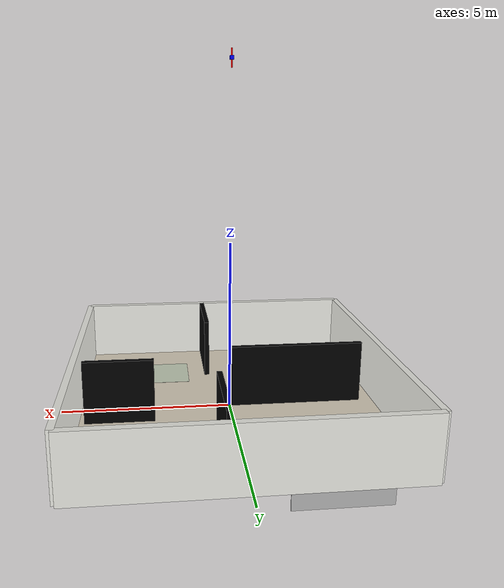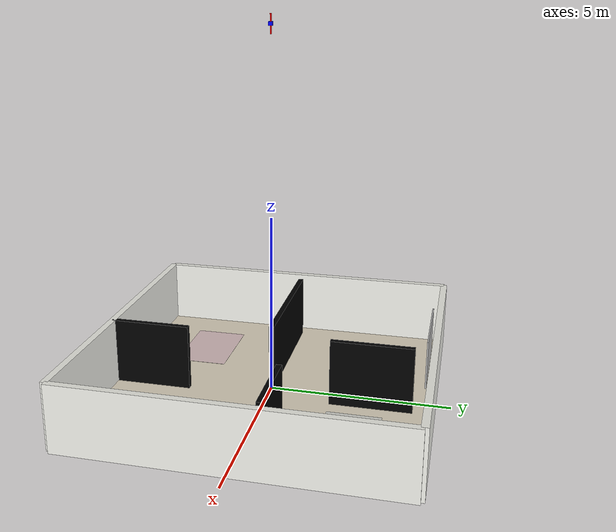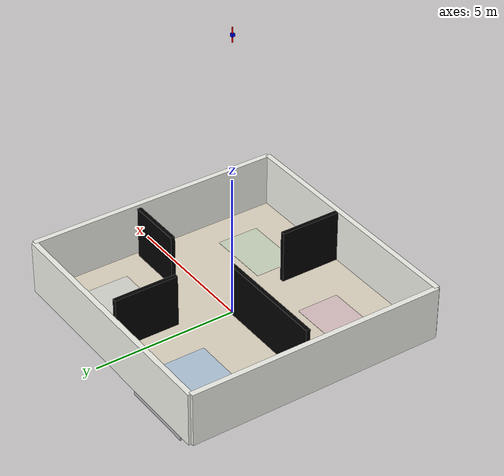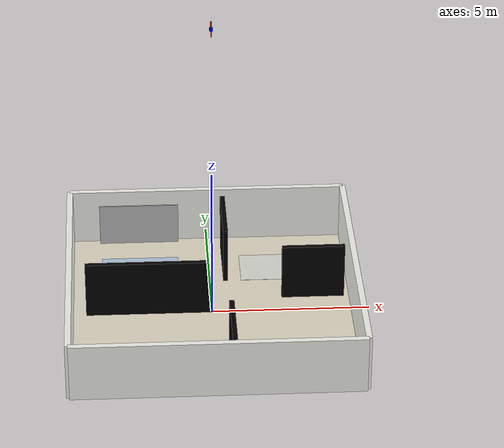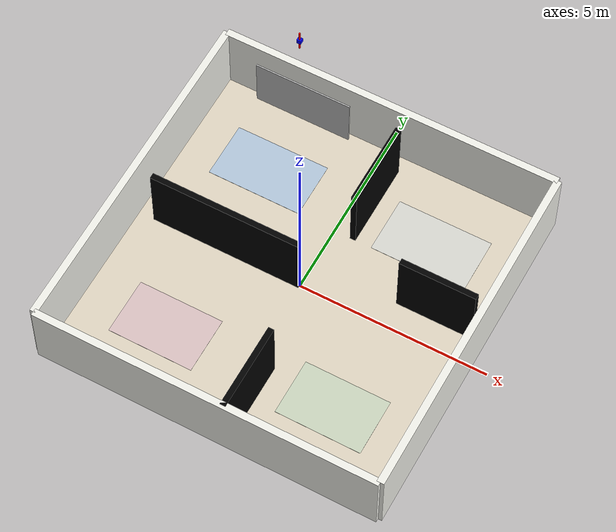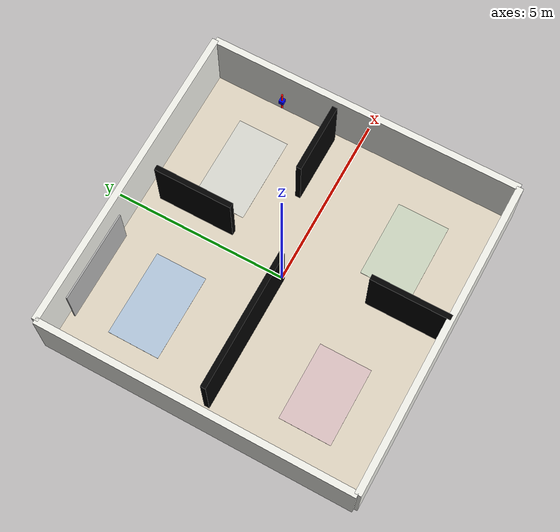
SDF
<sdf version="1.9">
 <world name="house">
  <physics type="ode">
   <max_step_size>0.003</max_step_size>
   <real_time_factor>1</real_time_factor>
   <real_time_update_rate>1000</real_time_update_rate>
  </physics>
  <plugin name="ignition::gazebo::systems::Physics" filename="libignition-gazebo-physics-system.so"/>
  <plugin name="ignition::gazebo::systems::UserCommands" filename="libignition-gazebo-user-commands-system.so"/>
  <plugin name="ignition::gazebo::systems::SceneBroadcaster" filename="libignition-gazebo-scene-broadcaster-system.so"/>
  <scene>
   <ambient>0.3 0.3 0.3 1</ambient>
   <background>0.85 0.90 0.95 1</background>
   <shadows>false</shadows>
   <grid>false</grid>
  </scene>
  <light type="directional" name="sun_light">
   <pose>0 0 7 0 0 0</pose>
   <diffuse>0.8 0.8 0.8 1</diffuse>
   <specular>0.2 0.2 0.2 1</specular>
   <direction>-0.3 0.1 -1</direction>
   <cast_shadows>false</cast_shadows>
  </light>
  <gravity>0 0 -9.8</gravity>
  <magnetic_field>6e-06 2.3e-05 -4.2e-05</magnetic_field>
  <atmosphere type="adiabatic"/>
  <model name="house_floor">
   <static>true</static>
   <link name="floor_link">
    <collision name="collision"><geometry><box><size>9 9 0.04</size></box></geometry></collision>
    <visual name="visual">
     <geometry><box><size>9 9 0.04</size></box></geometry>
     <material>
      <ambient>0.88 0.84 0.76 1</ambient>
      <diffuse>0.88 0.84 0.76 1</diffuse>
      <specular>0.1 0.1 0.1 1</specular>
     </material>
    </visual>
   </link>
  </model>
  <model name="wall_north">
   <static>true</static>
   <pose>0 4.5 0.94 0 0 0</pose>
   <link name="link">
    <collision name="collision"><geometry><box><size>9 0.19 1.88</size></box></geometry></collision>
    <visual name="visual">
     <geometry><box><size>9 0.19 1.88</size></box></geometry>
     <material><ambient>0.95 0.95 0.92 1</ambient><diffuse>0.95 0.95 0.92 1</diffuse></material>
    </visual>
   </link>
  </model>
  <model name="wall_south">
   <static>true</static>
   <pose>0 -4.5 0.94 0 0 0</pose>
   <link name="link">
    <collision name="collision"><geometry><box><size>9 0.19 1.88</size></box></geometry></collision>
    <visual name="visual">
     <geometry><box><size>9 0.19 1.88</size></box></geometry>
     <material><ambient>0.95 0.95 0.92 1</ambient><diffuse>0.95 0.95 0.92 1</diffuse></material>
    </visual>
   </link>
  </model>
  <model name="wall_east">
   <static>true</static>
   <pose>4.5 0 0.94 0 0 0</pose>
   <link name="link">
    <collision name="collision"><geometry><box><size>0.19 9 1.88</size></box></geometry></collision>
    <visual name="visual">
     <geometry><box><size>0.19 9 1.88</size></box></geometry>
     <material><ambient>0.95 0.95 0.92 1</ambient><diffuse>0.95 0.95 0.92 1</diffuse></material>
    </visual>
   </link>
  </model>
  <model name="wall_west">
   <static>true</static>
   <pose>-4.5 0 0.94 0 0 0</pose>
   <link name="link">
    <collision name="collision"><geometry><box><size>0.19 9 1.88</size></box></geometry></collision>
    <visual name="visual">
     <geometry><box><size>0.19 9 1.88</size></box></geometry>
     <material><ambient>0.95 0.95 0.92 1</ambient><diffuse>0.95 0.95 0.92 1</diffuse></material>
    </visual>
   </link>
  </model>
  <model name="inner_wall_top_left">
   <static>true</static>
   <pose>-2.00 0 0.94 0 0 0</pose>
   <link name="link">
    <collision name="collision"><geometry><box><size>4.00 0.15 1.88</size></box></geometry></collision>
    <visual name="visual">
     <geometry><box><size>4.00 0.15 1.88</size></box></geometry>
     <material><ambient>0 0 0 1</ambient><diffuse>0 0 0 1</diffuse></material>
    </visual>
   </link>
  </model>
  <model name="inner_wall_top_right">
   <static>true</static>
   <pose>3.25 0.75 0.94 0 0 0</pose>
   <link name="link">
    <collision name="collision"><geometry><box><size>2.00 0.15 1.88</size></box></geometry></collision>
    <visual name="visual">
     <geometry><box><size>2.00 0.15 1.88</size></box></geometry>
     <material><ambient>0 0 0 1</ambient><diffuse>0 0 0 1</diffuse></material>
    </visual>
   </link>
  </model>
  <model name="inner_wall_vertical_top">
   <static>true</static>
   <pose>0.50 2.87 0.94 0 0 0</pose>
   <link name="link">
    <collision name="collision"><geometry><box><size>0.15 2.25 1.88</size></box></geometry></collision>
    <visual name="visual">
     <geometry><box><size>0.15 2.25 1.88</size></box></geometry>
     <material><ambient>0 0 0 1</ambient><diffuse>0 0 0 1</diffuse></material>
    </visual>
   </link>
  </model>
  <model name="inner_wall_vertical_bottom">
   <static>true</static>
   <pose>0.50 -3.38 0.94 0 0 0</pose>
   <link name="link">
    <collision name="collision"><geometry><box><size>0.15 2.25 1.88</size></box></geometry></collision>
    <visual name="visual">
     <geometry><box><size>0.15 2.25 1.88</size></box></geometry>
     <material><ambient>0 0 0 1</ambient><diffuse>0 0 0 1</diffuse></material>
    </visual>
   </link>
  </model>
  <model name="ids_camera">
   <pose>0 0 10 0 1.5708 1.5708</pose>
   <static>true</static>
   <link name="camera_link">
    <visual name="camera_body_visual">
     <geometry><box><size>0.1 0.1 0.1</size></box></geometry>
     <material><ambient>0 0 1 1</ambient><diffuse>0 0 1 1</diffuse><specular>1 1 1 1</specular></material>
    </visual>
    <visual name="camera_axis">
     <geometry><cylinder><radius>0.02</radius><length>0.5</length></cylinder></geometry>
     <pose>0 0 0 0 1.5708 0</pose>
     <material><ambient>1 0 0 1</ambient><diffuse>1 0 0 1</diffuse></material>
    </visual>
    <sensor name="ids_overhead" type="camera">
     <always_on>true</always_on>
     <update_rate>47</update_rate>
     <visualize>true</visualize>
     <topic>/ids_overhead/image</topic>
     <camera name="overhead_cam">
      <horizontal_fov>1.3962634</horizontal_fov>
      <image><width>1936</width><height>1216</height><format>R8G8B8</format></image>
      <clip><near>0.1</near><far>100</far></clip>
     </camera>
    </sensor>
   </link>
  </model>
  <model name="living_room_rug">
   <static>true</static>
   <pose>-2.25 2.50 0.02 0 0 0</pose>
   <link name="link">
    <collision name="collision"><geometry><box><size>2.50 1.50 0.01</size></box></geometry></collision>
    <visual name="visual">
     <geometry><box><size>2.50 1.50 0.01</size></box></geometry>
     <material><ambient>0.70 0.78 0.86 1</ambient><diffuse>0.70 0.78 0.86 1</diffuse></material>
    </visual>
   </link>
  </model>
  <model name="kitchen_rug">
   <static>true</static>
   <pose>2.25 2.50 0.02 0 0 0</pose>
   <link name="link">
    <collision name="collision"><geometry><box><size>2.50 1.50 0.01</size></box></geometry></collision>
    <visual name="visual">
     <geometry><box><size>2.50 1.50 0.01</size></box></geometry>
     <material><ambient>0.85 0.85 0.82 1</ambient><diffuse>0.85 0.85 0.82 1</diffuse></material>
    </visual>
   </link>
  </model>
  <model name="bedroom_rug">
   <static>true</static>
   <pose>-2.25 -2.50 0.02 0 0 0</pose>
   <link name="link">
    <collision name="collision"><geometry><box><size>2.25 1.50 0.01</size></box></geometry></collision>
    <visual name="visual">
     <geometry><box><size>2.25 1.50 0.01</size></box></geometry>
     <material><ambient>0.86 0.76 0.76 1</ambient><diffuse>0.86 0.76 0.76 1</diffuse></material>
    </visual>
   </link>
  </model>
  <model name="study_rug">
   <static>true</static>
   <pose>2.25 -2.50 0.02 0 0 0</pose>
   <link name="link">
    <collision name="collision"><geometry><box><size>2.25 1.50 0.01</size></box></geometry></collision>
    <visual name="visual">
     <geometry><box><size>2.25 1.50 0.01</size></box></geometry>
     <material><ambient>0.80 0.84 0.75 1</ambient><diffuse>0.80 0.84 0.75 1</diffuse></material>
    </visual>
   </link>
  </model>
  <model name="tv_65in_emissive">
   <pose>-2.25 4.25 0.38 0 0 1.57</pose>
   <link name="link">
    <visual name="visual">
     <geometry><box><size>0.04 2.59 2.12</size></box></geometry>
     <material>
      <script><uri>material/script</uri><uri>textures</uri><name>Custom/tv_emissive</name></script>
     </material>
    </visual>
   </link>
   <static>1</static>
  </model>
 </world>
</sdf>
